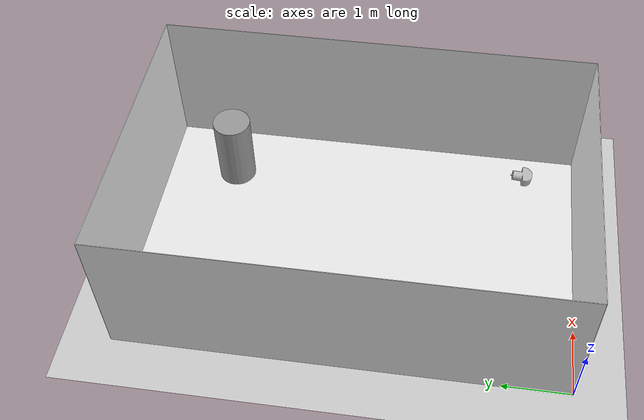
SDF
<?xml version="1.0" ?>
<sdf version="1.6">
  <world name="default">
    <include>
      <uri>model://ground_plane</uri>
    </include>
    <include>
      <uri>model://sun</uri>
    </include>

    <gui>
      <camera name='user_camera'>
        <pose>9.0 3.4 7.5 0.0 0.75 3.1</pose>
      </camera>
    </gui>

    <!-- basement tank -->
    <include>
      <uri>model://basement_tank</uri>
      <pose>0 0 0 0 0 0</pose>
      <static>true</static>
    </include>

    <!-- cylinder target -->
    <include>
      <uri>model://cylinder_target</uri>
      <pose>2.1 5.0 2.0 0 0 0</pose>
      <static>true</static>
    </include>

    <!-- Blueview M450 -->
    <include>
      <uri>model://blueview_m450_nps_multibeam</uri>
      <name>blueview_m450</name>
      <pose>2.1 1.0 2.0 3.14159265359 -0.1 1.5709</pose>
      <static>true</static>
    </include>

  </world>
</sdf>

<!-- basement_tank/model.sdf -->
<sdf version='1.6'>
  <model name='basement_tank_model'>
    <link name='basement_tank'>
      <inertial>
        <mass>1</mass>
      </inertial>

      <collision name='bottom'>
        <laser_retro>50</laser_retro>
        <pose frame=''>2.135 3.27 0.005 0 -0 0</pose>
        <geometry>
          <box>
            <size>4.27 6.54 0.01</size>
          </box>
        </geometry>
      </collision>
      <visual name='visual1'>
        <laser_retro>50</laser_retro>
        <pose frame=''>2.135 3.27 0.005 0 -0 0</pose>
        <geometry>
          <box>
            <size>4.27 6.54 0.01</size>
          </box>
        </geometry>
        <material>
          <script>
            <uri>file://media/materials/scripts/gazebo.material</uri>
            <name>Gazebo/White</name>
          </script>
        </material>
      </visual>

      <collision name='left_side'>
        <laser_retro>50</laser_retro>
        <pose frame=''>-0.005 3.27 1.12 0 -0 0</pose>
        <geometry>
          <box>
            <size>0.01 6.54 2.24</size>
          </box>
        </geometry>
      </collision>
      <visual name='visual2'>
        <laser_retro>50</laser_retro>
        <pose frame=''>-0.005 3.27 1.12 0 -0 0</pose>
        <geometry>
          <box>
            <size>0.01 6.54 2.24</size>
          </box>
        </geometry>
        <material>
          <script>
            <uri>file://media/materials/scripts/gazebo.material</uri>
            <name>Gazebo/White</name>
          </script>
        </material>
      </visual>

      <collision name='right_side'>
        <laser_retro>50</laser_retro>
        <pose frame=''>4.275 3.27 1.12 0 -0 0</pose>
        <geometry>
          <box>
            <size>0.01 6.54 2.24</size>
          </box>
        </geometry>
      </collision>
      <visual name='visual3'>
        <laser_retro>50</laser_retro>
        <pose frame=''>4.275 3.27 1.12 0 -0 0</pose>
        <geometry>
          <box>
            <size>0.01 6.54 2.24</size>
          </box>
        </geometry>
        <material>
          <script>
            <uri>file://media/materials/scripts/gazebo.material</uri>
            <name>Gazebo/White</name>
          </script>
        </material>
      </visual>

      <collision name='front_side'>
        <laser_retro>50</laser_retro>
        <pose frame=''>2.135 -0.005 1.12 0 -0 0</pose>
        <geometry>
          <box>
            <size>4.27 0.01 2.24</size>
          </box>
        </geometry>
      </collision>
      <visual name='visual4'>
        <laser_retro>50</laser_retro>
        <pose frame=''>2.135 -0.005 1.12 0 -0 0</pose>
        <geometry>
          <box>
            <size>4.27 0.01 2.24</size>
          </box>
        </geometry>
        <material>
          <script>
            <uri>file://media/materials/scripts/gazebo.material</uri>
            <name>Gazebo/White</name>
          </script>
        </material>
      </visual>

      <collision name='back_side'>
        <laser_retro>50</laser_retro>
        <pose frame=''>2.135 6.545 1.12 0 -0 0</pose>
        <geometry>
          <box>
            <size>4.27 0.01 2.24</size>
          </box>
        </geometry>
      </collision>
      <visual name='visual5'>
        <laser_retro>50</laser_retro>
        <pose frame=''>2.135 6.545 1.12 0 -0 0</pose>
        <geometry>
          <box>
            <size>4.27 0.01 2.24</size>
          </box>
        </geometry>
        <material>
          <script>
            <uri>file://media/materials/scripts/gazebo.material</uri>
            <name>Gazebo/White</name>
          </script>
        </material>
      </visual>

    </link>
  </model>
</sdf>

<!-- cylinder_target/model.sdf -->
<sdf version="1.6">
  <model name ='cylinder_target'>
    <link name='link'>
      <inertial>
        <mass>1</mass>
        <inertia>
          <ixx>0.145833</ixx>
          <ixy>0</ixy>
          <ixz>0</ixz>
          <iyy>0.145833</iyy>
          <iyz>0</iyz>
          <izz>0.125</izz>
        </inertia>
        <pose frame=''>0 0 0 0 -0 0</pose>
      </inertial>
      <collision name='cylinder'>
        <laser_retro>255</laser_retro>
        <geometry>
          <cylinder>
            <radius>0.25</radius>
            <length>1</length>
          </cylinder>
        </geometry>
        <max_contacts>10</max_contacts>
        <surface>
          <contact>
            <ode/>
          </contact>
          <bounce/>
          <friction>
            <torsional>
              <ode/>
            </torsional>
            <ode/>
          </friction>
        </surface>
      </collision>
      <visual name='visual'>
        <laser_retro>255</laser_retro>
        <geometry>
          <cylinder>
            <radius>0.25</radius>
            <length>1</length>
          </cylinder>
        </geometry>
        <material>
          <script>
            <name>Gazebo/Grey</name>
            <uri>file://media/materials/scripts/gazebo.material</uri>
          </script>
        </material>
      </visual>
      <self_collide>0</self_collide>
      <enable_wind>0</enable_wind>
      <kinematic>0</kinematic>
    </link>
  </model>
</sdf>

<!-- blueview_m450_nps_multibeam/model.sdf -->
<sdf version="1.6">
  <model name="blueview_m450">
    <link name="forward_sonar_link">
      <inertial>
        <pose>0 0 0 3.14159265359 0 -1.570796</pose>
        <mass>4.78</mass>
        <!-- Mark only - based on cylinder -->
        <inertia>
          <ixx>0.0191</ixx>          <!-- as 2/5mr^2 -->
          <ixy>0</ixy>
          <ixz>0</ixz>
          <iyy>0.0191</iyy>
          <iyz>0</iyz>
          <izz>0.0191</izz>
        </inertia>
      </inertial>
      <collision name="collision">
        <pose>0 0 0 3.14159265359 0 -1.570796</pose>
        <geometry>
          <mesh>
            <uri>model://blueview_m450_nps_multibeam/meshes/COLLISION-BlueView-M450.dae</uri>
          </mesh>
        </geometry>
      </collision>
      <visual name="visual">
        <pose>0 0 0 3.14159265359 0 -1.570796</pose>
        <geometry>
          <mesh>
            <uri>model://blueview_m450_nps_multibeam/meshes/BlueView-M450.dae</uri>
          </mesh>
        </geometry>
      </visual>

      <sensor name="multieam_sonar" type="depth">
        <visualize>true</visualize>
        <always_on>true</always_on>
        <update_rate>10</update_rate>
        <camera>
          <!-- 90 degrees for the M450-90 -->
          <horizontal_fov>1.54719755</horizontal_fov>
          <image>
            <width>512</width>
            <!-- Set vertical FOV by setting image height -->
            <!-- Approx 2 times the spec sheet (sepc: 10 deg.) -->
            <height>114</height>
            <format>R8G8B8</format>
          </image>
          <clip>
            <near>2</near>
            <far>150</far>
          </clip>
          <depth_camera>
            <output>depths</output>
          </depth_camera>
          <save enabled="true">
            <path>/tmp/camera</path>
          </save>
        </camera>
        <plugin filename="libnps_multibeam_sonar_ros_plugin.so" name="forward_sonar">
          <!-- Sonar properties -->
          <verticalFOV>10</verticalFOV>
          <sonarFreq>450e3</sonarFreq>
          <bandwidth>29.9e3</bandwidth>
          <soundSpeed>1500</soundSpeed>
          <sourceLevel>220</sourceLevel>
          <maxDistance>10</maxDistance>
          <constantReflectivity>true</constantReflectivity>
          <raySkips>10</raySkips>
          <sensorGain>0.02</sensorGain>
          <plotScaler>0</plotScaler>
          <writeLog>false</writeLog>
          <debugFlag>false</debugFlag>
          <writeFrameInterval>5</writeFrameInterval>
          <!-- This name is prepended to ROS topics -->
          <cameraName>blueview_m450</cameraName>
          <!-- ROS publication topics -->
          <imageTopicName>image_raw</imageTopicName>
          <cameraInfoTopicName>image_raw/camera_info</cameraInfoTopicName>
          <pointCloudTopicName>point_cloud</pointCloudTopicName>
          <depthImageTopicName>image_depth</depthImageTopicName>
          <depthImageCameraInfoTopicName>image_depth/camera_info</depthImageCameraInfoTopicName>
          <sonarImageRawTopicName>sonar_image_raw</sonarImageRawTopicName>
          <sonarImageTopicName>sonar_image</sonarImageTopicName>
          <frameName>forward_sonar_optical_link</frameName>
        </plugin>
      </sensor>
    </link>
  </model>
</sdf>
